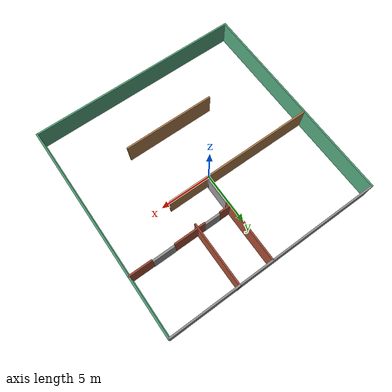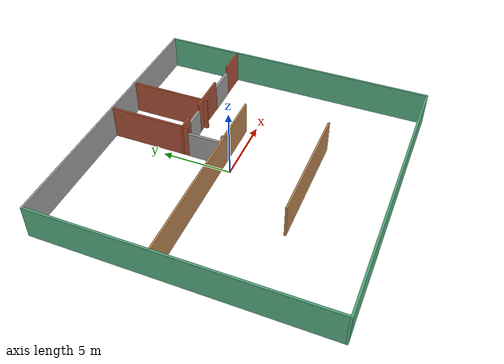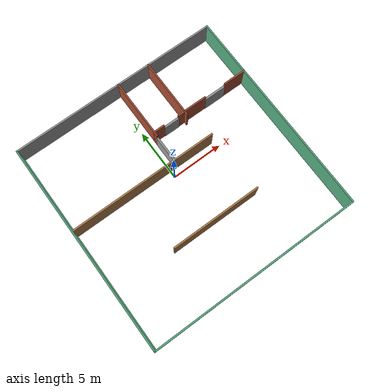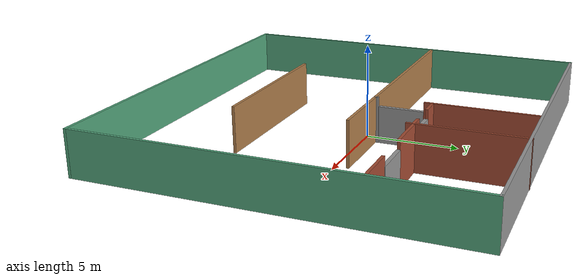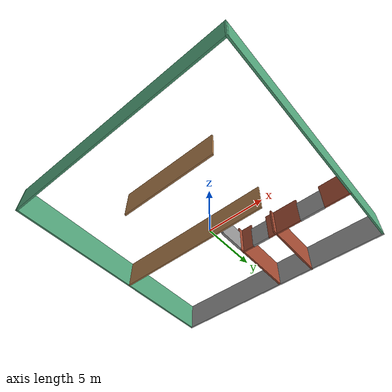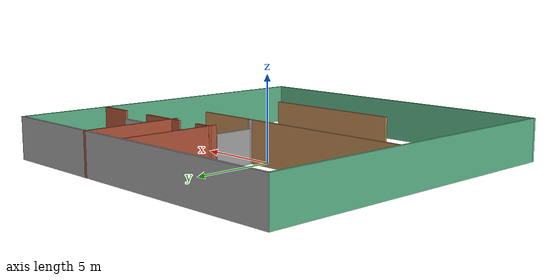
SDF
<?xml version='1.0'?>
<sdf version='1.6'>
  <model name='homeLayout'>
    <pose frame=''>0.225514 -0.925519 0 0 -0 0</pose>
    <link name='Door_0'>
      <collision name='Door_0_Collision'>
        <geometry>
          <box>
            <size>2.12563 0.2 2</size>
          </box>
        </geometry>
        <pose frame=''>0 0 1 0 -0 0</pose>
      </collision>
      <visual name='Door_0_Visual'>
        <pose frame=''>0 0 1 0 -0 0</pose>
        <geometry>
          <box>
            <size>2.12563 0.2 2</size>
          </box>
        </geometry>
        <material>
          <script>
            <uri>file://media/materials/scripts/gazebo.material</uri>
            <name>Gazebo/Grey</name>
          </script>
        </material>
      </visual>
      <pose frame=''>6.95469 4.66557 0 0 -0 0</pose>
    </link>
    <link name='Door_1'>
      <collision name='Door_1_Collision'>
        <geometry>
          <box>
            <size>2.39743 0.2 2</size>
          </box>
        </geometry>
        <pose frame=''>0 0 1 0 -0 0</pose>
      </collision>
      <visual name='Door_1_Visual'>
        <pose frame=''>0 0 1 0 -0 0</pose>
        <geometry>
          <box>
            <size>2.39743 0.2 2</size>
          </box>
        </geometry>
        <material>
          <script>
            <uri>file://media/materials/scripts/gazebo.material</uri>
            <name>Gazebo/Grey</name>
          </script>
        </material>
      </visual>
      <pose frame=''>0.353108 2.99206 0 0 0 -1.57085</pose>
    </link>
    <link name='Door_2'>
      <collision name='Door_2_Collision'>
        <geometry>
          <box>
            <size>1.5271 0.2 2</size>
          </box>
        </geometry>
        <pose frame=''>0 0 1 0 -0 0</pose>
      </collision>
      <visual name='Door_2_Visual'>
        <pose frame=''>0 0 1 0 -0 0</pose>
        <geometry>
          <box>
            <size>1.5271 0.2 2</size>
          </box>
        </geometry>
        <material>
          <script>
            <uri>file://media/materials/scripts/gazebo.material</uri>
            <name>Gazebo/Grey</name>
          </script>
        </material>
      </visual>
      <pose frame=''>2.16198 4.63378 0 0 -0 0</pose>
    </link>
    <link name='Wall_0'>
      <collision name='Wall_0_Collision'>
        <geometry>
          <box>
            <size>20.5 0.15 2.5</size>
          </box>
        </geometry>
        <pose frame=''>0 0 1.25 0 -0 0</pose>
      </collision>
      <visual name='Wall_0_Visual'>
        <pose frame=''>0 0 1.25 0 -0 0</pose>
        <geometry>
          <box>
            <size>20.5 0.15 2.5</size>
          </box>
        </geometry>
        <material>
          <script>
            <uri>file://media/materials/scripts/gazebo.material</uri>
            <name>Gazebo/Grey</name>
          </script>
          <ambient>1 1 1 1</ambient>
        </material>
        <meta>
          <layer>0</layer>
        </meta>
      </visual>
      <pose frame=''>0 10.1634 0 0 -0 0</pose>
    </link>
    <link name='Wall_1'>
      <collision name='Wall_1_Collision'>
        <geometry>
          <box>
            <size>20.5 0.15 2.5</size>
          </box>
        </geometry>
        <pose frame=''>0 0 1.25 0 -0 0</pose>
      </collision>
      <visual name='Wall_1_Visual'>
        <pose frame=''>0 0 1.25 0 -0 0</pose>
        <geometry>
          <box>
            <size>20.5 0.15 2.5</size>
          </box>
        </geometry>
        <material>
          <script>
            <uri>file://media/materials/scripts/gazebo.material</uri>
            <name>Gazebo/Grey</name>
          </script>
          <ambient>0.333333 0.666667 0.498039 1</ambient>
        </material>
        <meta>
          <layer>0</layer>
        </meta>
      </visual>
      <pose frame=''>10.175 -0.011647 0 0 0 -1.5708</pose>
    </link>
    <link name='Wall_11'>
      <collision name='Wall_11_Collision'>
        <geometry>
          <box>
            <size>1.15 0.15 2.5</size>
          </box>
        </geometry>
        <pose frame=''>0 0 1.25 0 -0 0</pose>
      </collision>
      <visual name='Wall_11_Visual'>
        <pose frame=''>0 0 1.25 0 -0 0</pose>
        <geometry>
          <box>
            <size>1.15 0.15 2.5</size>
          </box>
        </geometry>
        <material>
          <script>
            <uri>file://media/materials/scripts/gazebo.material</uri>
            <name>Gazebo/Bricks</name>
          </script>
          <ambient>1 1 1 1</ambient>
        </material>
        <meta>
          <layer>0</layer>
        </meta>
      </visual>
      <pose frame=''>0.848247 4.64914 0 0 -0 0</pose>
    </link>
    <link name='Wall_13'>
      <collision name='Wall_13_Collision'>
        <geometry>
          <box>
            <size>6 0.15 2.5</size>
          </box>
        </geometry>
        <pose frame=''>0 0 1.25 0 -0 0</pose>
      </collision>
      <visual name='Wall_13_Visual'>
        <pose frame=''>0 0 1.25 0 -0 0</pose>
        <geometry>
          <box>
            <size>6 0.15 2.5</size>
          </box>
        </geometry>
        <material>
          <script>
            <uri>file://media/materials/scripts/gazebo.material</uri>
            <name>Gazebo/Bricks</name>
          </script>
          <ambient>1 1 1 1</ambient>
        </material>
        <meta>
          <layer>0</layer>
        </meta>
      </visual>
      <pose frame=''>3.613 7.26165 0 0 0 -1.5708</pose>
    </link>
    <link name='Wall_17'>
      <collision name='Wall_17_Collision'>
        <geometry>
          <box>
            <size>2.25 0.15 2.5</size>
          </box>
        </geometry>
        <pose frame=''>0 0 1.25 0 -0 0</pose>
      </collision>
      <visual name='Wall_17_Visual'>
        <pose frame=''>0 0 1.25 0 -0 0</pose>
        <geometry>
          <box>
            <size>2.25 0.15 2.5</size>
          </box>
        </geometry>
        <material>
          <script>
            <uri>file://media/materials/scripts/gazebo.material</uri>
            <name>Gazebo/Bricks</name>
          </script>
          <ambient>1 1 1 1</ambient>
        </material>
        <meta>
          <layer>0</layer>
        </meta>
      </visual>
      <pose frame=''>4.77518 4.67086 0 0 -0 0</pose>
    </link>
    <link name='Wall_19'>
      <collision name='Wall_19_Collision'>
        <geometry>
          <box>
            <size>2.25 0.15 2.5</size>
          </box>
        </geometry>
        <pose frame=''>0 0 1.25 0 -0 0</pose>
      </collision>
      <visual name='Wall_19_Visual'>
        <pose frame=''>0 0 1.25 0 -0 0</pose>
        <geometry>
          <box>
            <size>2.25 0.15 2.5</size>
          </box>
        </geometry>
        <material>
          <script>
            <uri>file://media/materials/scripts/gazebo.material</uri>
            <name>Gazebo/Bricks</name>
          </script>
          <ambient>1 1 1 1</ambient>
        </material>
        <meta>
          <layer>0</layer>
        </meta>
      </visual>
      <pose frame=''>9.11915 4.66519 0 0 -0 0</pose>
    </link>
    <link name='Wall_2'>
      <collision name='Wall_2_Collision'>
        <geometry>
          <box>
            <size>20.5 0.15 2.5</size>
          </box>
        </geometry>
        <pose frame=''>0 0 1.25 0 -0 0</pose>
      </collision>
      <visual name='Wall_2_Visual'>
        <pose frame=''>0 0 1.25 0 -0 0</pose>
        <geometry>
          <box>
            <size>20.5 0.15 2.5</size>
          </box>
        </geometry>
        <material>
          <script>
            <uri>file://media/materials/scripts/gazebo.material</uri>
            <name>Gazebo/Grey</name>
          </script>
          <ambient>0.333333 0.666667 0.498039 1</ambient>
        </material>
        <meta>
          <layer>0</layer>
        </meta>
      </visual>
      <pose frame=''>0 -10.1866 0 0 -0 3.14159</pose>
    </link>
    <link name='Wall_21'>
      <collision name='Wall_21_Collision'>
        <geometry>
          <box>
            <size>0.25 0.15 2.5</size>
          </box>
        </geometry>
        <pose frame=''>0 0 1.25 0 -0 0</pose>
      </collision>
      <visual name='Wall_21_Visual'>
        <pose frame=''>0 0 1.25 0 -0 0</pose>
        <geometry>
          <box>
            <size>0.25 0.15 2.5</size>
          </box>
        </geometry>
        <material>
          <script>
            <uri>file://media/materials/scripts/gazebo.material</uri>
            <name>Gazebo/Grey</name>
          </script>
          <ambient>1 1 1 1</ambient>
        </material>
        <meta>
          <layer>0</layer>
        </meta>
      </visual>
      <pose frame=''>0.382002 1.63982 0 0 -0 1.5708</pose>
    </link>
    <link name='Wall_23'>
      <collision name='Wall_23_Collision'>
        <geometry>
          <box>
            <size>0.75 0.15 2.5</size>
          </box>
        </geometry>
        <pose frame=''>0 0 1.25 0 -0 0</pose>
      </collision>
      <visual name='Wall_23_Visual'>
        <pose frame=''>0 0 1.25 0 -0 0</pose>
        <geometry>
          <box>
            <size>0.75 0.15 2.5</size>
          </box>
        </geometry>
        <material>
          <script>
            <uri>file://media/materials/scripts/gazebo.material</uri>
            <name>Gazebo/Bricks</name>
          </script>
          <ambient>1 1 1 1</ambient>
        </material>
        <meta>
          <layer>0</layer>
        </meta>
      </visual>
      <pose frame=''>3.27751 4.64808 0 0 -0 3.14159</pose>
    </link>
    <link name='Wall_3'>
      <collision name='Wall_3_Collision'>
        <geometry>
          <box>
            <size>20.5 0.15 2.5</size>
          </box>
        </geometry>
        <pose frame=''>0 0 1.25 0 -0 0</pose>
      </collision>
      <visual name='Wall_3_Visual'>
        <pose frame=''>0 0 1.25 0 -0 0</pose>
        <geometry>
          <box>
            <size>20.5 0.15 2.5</size>
          </box>
        </geometry>
        <material>
          <script>
            <uri>file://media/materials/scripts/gazebo.material</uri>
            <name>Gazebo/Grey</name>
          </script>
          <ambient>0.333333 0.666667 0.498039 1</ambient>
        </material>
        <meta>
          <layer>0</layer>
        </meta>
      </visual>
      <pose frame=''>-10.175 -0.011647 0 0 -0 1.5708</pose>
    </link>
    <link name='Wall_5'>
      <collision name='Wall_5_Collision'>
        <geometry>
          <box>
            <size>14.5 0.15 2.5</size>
          </box>
        </geometry>
        <pose frame=''>0 0 1.25 0 -0 0</pose>
      </collision>
      <visual name='Wall_5_Visual'>
        <pose frame=''>0 0 1.25 0 -0 0</pose>
        <geometry>
          <box>
            <size>14.5 0.15 2.5</size>
          </box>
        </geometry>
        <material>
          <script>
            <uri>file://media/materials/scripts/gazebo.material</uri>
            <name>Gazebo/Wood</name>
          </script>
          <ambient>1 1 1 1</ambient>
        </material>
        <meta>
          <layer>0</layer>
        </meta>
      </visual>
      <pose frame=''>-2.93271 1.57275 0 0 -0 0</pose>
    </link>
    <link name='Wall_7'>
      <collision name='Wall_7_Collision'>
        <geometry>
          <box>
            <size>8.75 0.15 2.5</size>
          </box>
        </geometry>
        <pose frame=''>0 0 1.25 0 -0 0</pose>
      </collision>
      <visual name='Wall_7_Visual'>
        <pose frame=''>0 0 1.25 0 -0 0</pose>
        <geometry>
          <box>
            <size>8.75 0.15 2.5</size>
          </box>
        </geometry>
        <material>
          <script>
            <uri>file://media/materials/scripts/gazebo.material</uri>
            <name>Gazebo/Wood</name>
          </script>
          <ambient>1 1 1 1</ambient>
        </material>
        <meta>
          <layer>0</layer>
        </meta>
      </visual>
      <pose frame=''>0.160493 -4.51851 0 0 -0 0</pose>
    </link>
    <link name='Wall_9'>
      <collision name='Wall_9_Collision'>
        <geometry>
          <box>
            <size>6 0.15 2.5</size>
          </box>
        </geometry>
        <pose frame=''>0 0 1.25 0 -0 0</pose>
      </collision>
      <visual name='Wall_9_Visual'>
        <pose frame=''>0 0 1.25 0 -0 0</pose>
        <geometry>
          <box>
            <size>6 0.15 2.5</size>
          </box>
        </geometry>
        <material>
          <script>
            <uri>file://media/materials/scripts/gazebo.material</uri>
            <name>Gazebo/Bricks</name>
          </script>
          <ambient>1 1 1 1</ambient>
        </material>
        <meta>
          <layer>0</layer>
        </meta>
      </visual>
      <pose frame=''>0.352028 7.20012 0 0 0 -1.5708</pose>
    </link>
    <static>1</static>
  </model>
</sdf>
